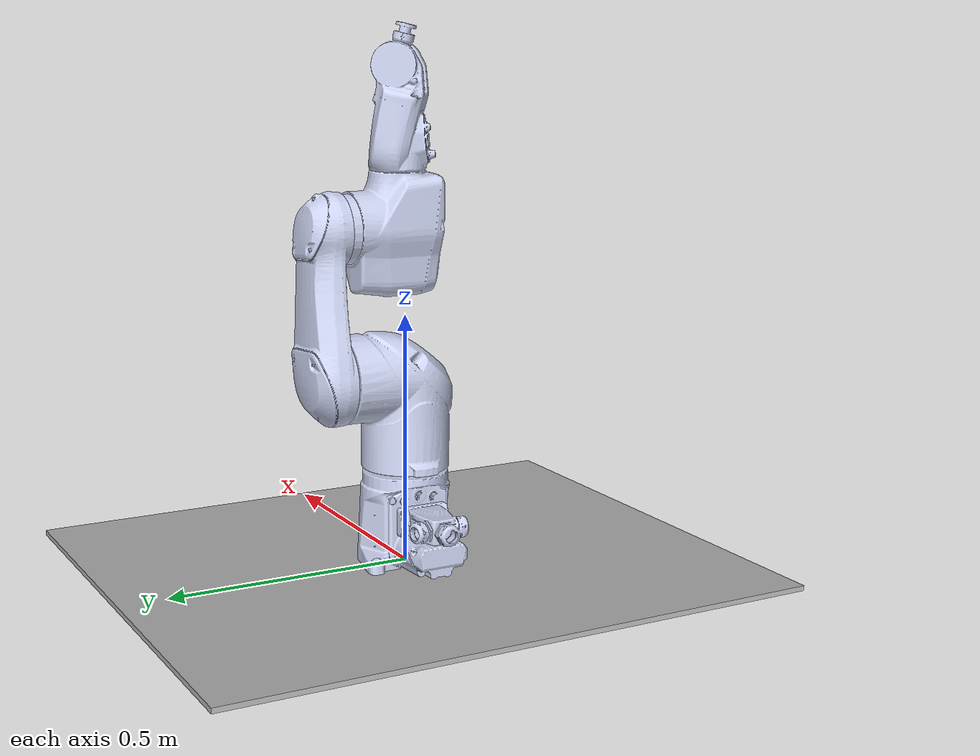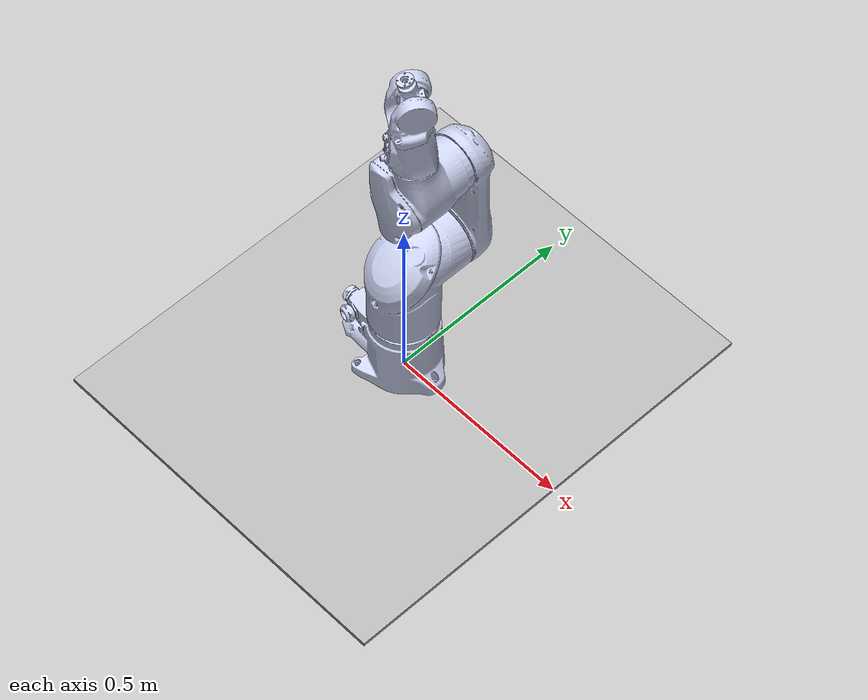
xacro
<?xml version="1.0" encoding="utf-8"?>
<robot
  name="staubli" xmlns:xacro="http://www.ros.org/wiki/xacro">

  <xacro:macro name="box_inertial" params="m x y z rpy">
    <inertial>
      <origin xyz="0 ${y/2} 0" rpy="${rpy}" />
      <mass value="${m}"/>
      <inertia ixx="${1/12 * m * (y**2 + z**2)}" iyy="${1/12 * m * (x**2 + z**2)}" izz="${1/12 * m * (x**2 + y**2)}" ixy="0" ixz="0" iyz="0"/>
    </inertial>
  </xacro:macro>

  <!--  For display  -->

  <link name="world" />
  <joint name="world_joint" type="fixed">
      <parent link="world" />
      <child link="table" />
      <origin xyz="0.0 0.0 0.0" rpy="0.0 0.0 0.0" />
  </joint>

   <link name="table" >
     <mass
        value="7.5748" />
      <inertia
        ixx="0.029538"
        ixy="-8.9594E-05"
        ixz="0.00038731"
        iyy="0.027722"
        iyz="9.1547E-06"
        izz="0.022274" />
      <visual>
        <geometry>
          <box size="1.0 1.2 0.01" />
        </geometry>
        <material name="LightGrey">
          <color rgba="0.7 0.7 0.7 1.0"/>
        </material>
      </visual>
      <collision>
        <origin xyz="0.0 0.0 0.005" rpy="0 0 0" />
        <geometry>
          <box size="1.0 1.2 0.01" />
        </geometry>
      </collision>
  </link>

  <joint name="base_to_table" type="fixed">
      <origin xyz="0 0 0.001" rpy="${-pi/2} 0.0 0.0"/>
      <parent link="table" />
      <child link = "base" />
  </joint>

  <link
    name="base">
    <inertial>
      <origin
        xyz="-0.036093 -0.0011918 0.08178"
        rpy="0 0 0" />
      <mass
        value="7.5748" />
      <inertia
        ixx="0.029538"
        ixy="-8.9594E-05"
        ixz="0.00038731"
        iyy="0.027722"
        iyz="9.1547E-06"
        izz="0.022274" />
    </inertial>
    <visual>
      <origin
        xyz="0 0 0"
        rpy="0 0 0" />
      <geometry>
        <mesh
          filename="package://staubli/meshes/base.STL" />
      </geometry>
      <material
        name="">
        <color
          rgba="0.79216 0.81961 0.93333 1" />
      </material>
    </visual>
    <collision>
      <origin
        xyz="0 0 0"
        rpy="0 0 0" />
      <geometry>
        <mesh
          filename="package://staubli/meshes/base.STL" />
      </geometry>
    </collision>
  </link>
  <link
    name="shoulder">
    <inertial>
      <origin
        xyz="-0.00023698 -0.13392 0.023184"
        rpy="0 0 0" />
      <mass
        value="7.2296" />
      <inertia
        ixx="0.059563"
        ixy="0.00017994"
        ixz="-4.0104E-05"
        iyy="0.037079"
        iyz="0.010038"
        izz="0.050678" />
    </inertial>
    <visual>
      <origin
        xyz="0 0 0"
        rpy="0 0 0" />
      <geometry>
        <mesh
          filename="package://staubli/meshes/shoulder.STL" />
      </geometry>
      <material
        name="">
        <color
          rgba="0.79216 0.81961 0.93333 1" />
      </material>
    </visual>
    <collision>
      <origin
        xyz="0 0 0"
        rpy="0 0 0" />
      <geometry>
        <mesh
          filename="package://staubli/meshes/shoulder.STL" />
      </geometry>
    </collision>
  </link>
  <joint
    name="base_shoulder_joint"
    type="revolute">
    <origin
      xyz="0 -0.19562 0"
      rpy="0 0 0" />
    <parent
      link="base" />
    <child
      link="shoulder" />
    <axis
      xyz="0 1 0" />
    <limit
      lower="-2.9671" upper="2.9671"
      effort="20"
      velocity="2" />
    <!--dynamics
      damping="0.7"
      friction="100" /-->
  </joint>
  <link
    name="arm">
    <inertial>
      <origin
        xyz="0.001767 -0.12741 0.041731"
        rpy="0 0 0" />
      <mass
        value="4.1314" />
      <inertia
        ixx="0.063289"
        ixy="0.00024419"
        ixz="2.1544E-05"
        iyy="0.0084984"
        iyz="-0.0015531"
        izz="0.068274" />
    </inertial>
    <visual>
      <origin
        xyz="0 0 0"
        rpy="0 0 0" />
      <geometry>
        <mesh
          filename="package://staubli/meshes/arm.STL" />
      </geometry>
      <material
        name="">
        <color
          rgba="0.79216 0.81961 0.93333 1" />
      </material>
    </visual>
    <collision>
      <origin
        xyz="0 0 0"
        rpy="0 0 0" />
      <geometry>
        <mesh
          filename="package://staubli/meshes/arm.STL" />
      </geometry>
    </collision>
  </link>
  <joint
    name="shoulder_arm_joint"
    type="revolute">
    <origin
      xyz="0 -0.18638 0.13"
      rpy="0 0 0.083621" />
    <parent
      link="shoulder" />
    <child
      link="arm" />
    <axis
      xyz="0 0 1" />
    <limit
      lower="-2.9671" upper="2.9671"
      effort="20"
      velocity="2" />
    <!--dynamics
      damping="0.7"
      friction="100" /-->
  </joint>
  <link
    name="elbow">
    <inertial>
      <origin
        xyz="-0.0038856 0.0079479 -0.10609"
        rpy="0 0 0" />
      <mass
        value="4.7834" />
      <inertia
        ixx="0.029621"
        ixy="0.00014964"
        ixz="-0.00068515"
        iyy="0.01953"
        iyz="-0.00061223"
        izz="0.022392" />
    </inertial>
    <visual>
      <origin
        xyz="0 0 0"
        rpy="0 0 0" />
      <geometry>
        <mesh
          filename="package://staubli/meshes/elbow.STL" />
      </geometry>
      <material
        name="">
        <color
          rgba="0.79216 0.81961 0.93333 1" />
      </material>
    </visual>
    <collision>
      <origin
        xyz="0 0 0"
        rpy="0 0 0" />
      <geometry>
        <mesh
          filename="package://staubli/meshes/elbow.STL" />
      </geometry>
    </collision>
  </link>
  <joint
    name="arm_elbow_joint"
    type="revolute">
    <origin
      xyz="0 -0.29 0"
      rpy="0 0 -0.083621" />
    <parent
      link="arm" />
    <child
      link="elbow" />
    <axis
      xyz="0 0 1" />
    <limit
      lower="-2.9671" upper="2.9671"
      effort="20"
      velocity="2" />
    <!--dynamics
      damping="0.7"
      friction="100" /-->
  </joint>
  <link
    name="forearm">
    <inertial>
      <origin
        xyz="-0.0028825 7.4416E-07 0.10602"
        rpy="0 0 0" />
      <mass
        value="2.2867" />
      <inertia
        ixx="0.0056823"
        ixy="3.2614E-08"
        ixz="-0.00022641"
        iyy="0.004438"
        iyz="-6.8535E-07"
        izz="0.0043222" />
    </inertial>
    <visual>
      <origin
        xyz="0 0 0"
        rpy="0 0 0" />
      <geometry>
        <mesh
          filename="package://staubli/meshes/forearm.STL" />
      </geometry>
      <material
        name="">
        <color
          rgba="0.79216 0.81961 0.93333 1" />
      </material>
    </visual>
    <collision>
      <origin
        xyz="0 0 0"
        rpy="0 0 0" />
      <geometry>
        <mesh
          filename="package://staubli/meshes/forearm.STL" />
      </geometry>
    </collision>
  </link>
  <joint
    name="elbow_forarm_joint"
    type="revolute">
    <origin
      xyz="0 -0.10845 -0.1253"
      rpy="1.5708 -0.9718 0" />
    <parent
      link="elbow" />
    <child
      link="forearm" />
    <axis
      xyz="0 0 1" />
    <limit
      lower="-2.9671" upper="2.9671"
      effort="20"
      velocity="2" />
    <!--dynamics
      damping="0.7"
      friction="100" /-->
  </joint>
  <link
    name="wrist">
    <inertial>
      <origin
        xyz="0.00019039 -0.01525 -0.00049904"
        rpy="0 0 0" />
      <mass
        value="0.11471" />
      <inertia
        ixx="8.4067E-05"
        ixy="-3.5655E-07"
        ixz="-4.7628E-11"
        iyy="2.9425E-05"
        iyz="4.1043E-09"
        izz="9.5321E-05" />
    </inertial>
    <visual>
      <origin
        xyz="0 0 0"
        rpy="0 0 0" />
      <geometry>
        <mesh
          filename="package://staubli/meshes/wrist.STL" />
      </geometry>
      <material
        name="">
        <color
          rgba="0.79216 0.81961 0.93333 1" />
      </material>
    </visual>
    <collision>
      <origin
        xyz="0 0 0"
        rpy="0 0 0" />
      <geometry>
        <mesh
          filename="package://staubli/meshes/wrist.STL" />
      </geometry>
    </collision>
  </link>
  <joint
    name="forarm_wrist_joint"
    type="revolute">
    <origin
      xyz="0 0 0.20175"
      rpy="-1.5708 0.23604 3.1416" />
    <parent
      link="forearm" />
    <child
      link="wrist" />
    <axis
      xyz="0 0 1" />
    <limit
      lower="-2.9671" upper="2.9671"
      effort="20"
      velocity="2" />
    <!--dynamics
      damping="0.7"
      friction="100" /-->
  </joint>
  <link
    name="flange">
    <inertial>
      <origin
        xyz="-0.00019716 2.5532E-09 0.010257"
        rpy="0 0 0" />
      <mass
        value="0.0088462" />
      <inertia
        ixx="1.0446E-06"
        ixy="1.8452E-11"
        ixz="6.6235E-09"
        iyy="1.0168E-06"
        iyz="1.3124E-15"
        izz="1.5808E-06" />
    </inertial>
    <visual>
      <origin
        xyz="0 0 0"
        rpy="0 0 0" />
      <geometry>
        <mesh
          filename="package://staubli/meshes/flange.STL" />
      </geometry>
      <material
        name="">
        <color
          rgba="0.79216 0.81961 0.93333 1" />
      </material>
    </visual>
    <collision>
      <origin
        xyz="0 0 0"
        rpy="0 0 0" />
      <geometry>
        <mesh
          filename="package://staubli/meshes/flange.STL" />
      </geometry>
    </collision>
  </link>
  <joint
    name="wrist_flange_joint"
    type="revolute">
    <origin
      xyz="0 -0.062155 -0.0005"
      rpy="-1.5708 -0.9718 3.1416" />
    <parent
      link="wrist" />
    <child
      link="flange" />
    <axis
      xyz="0 0 1" />
    <limit
      lower="-2.9671" upper="2.9671"
      effort="20"
      velocity="2" />
    <!--dynamics
      damping="0.7"
      friction="100" /-->
  </joint>
</robot>
